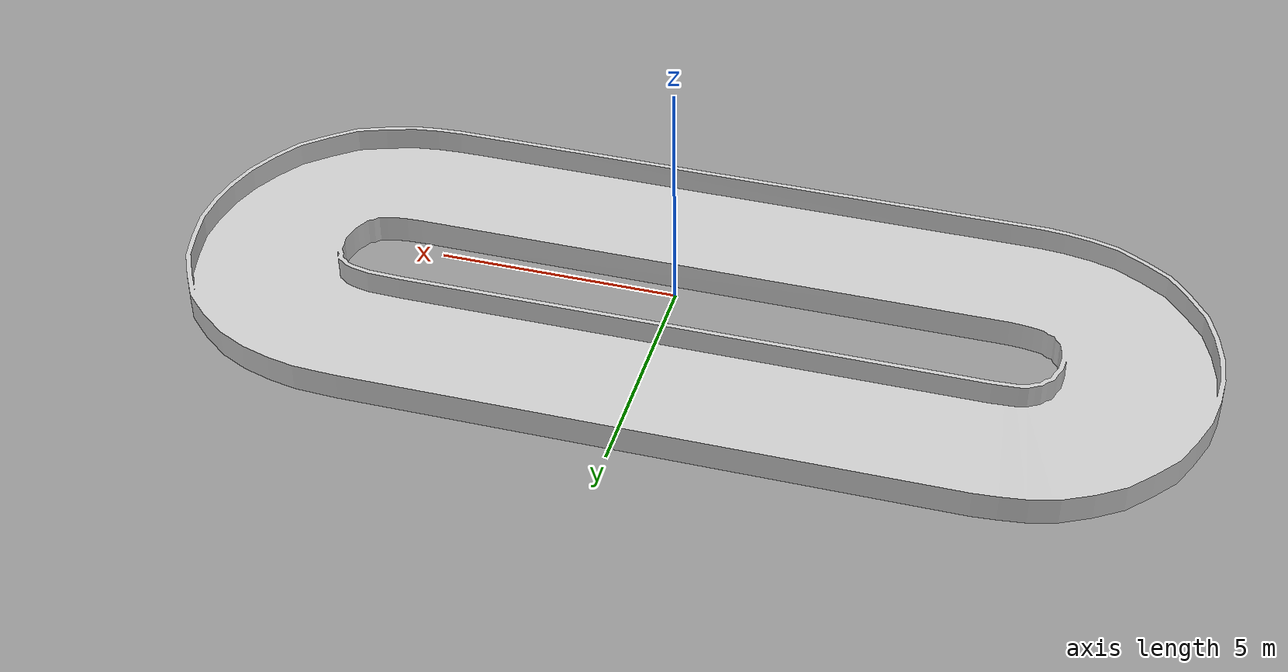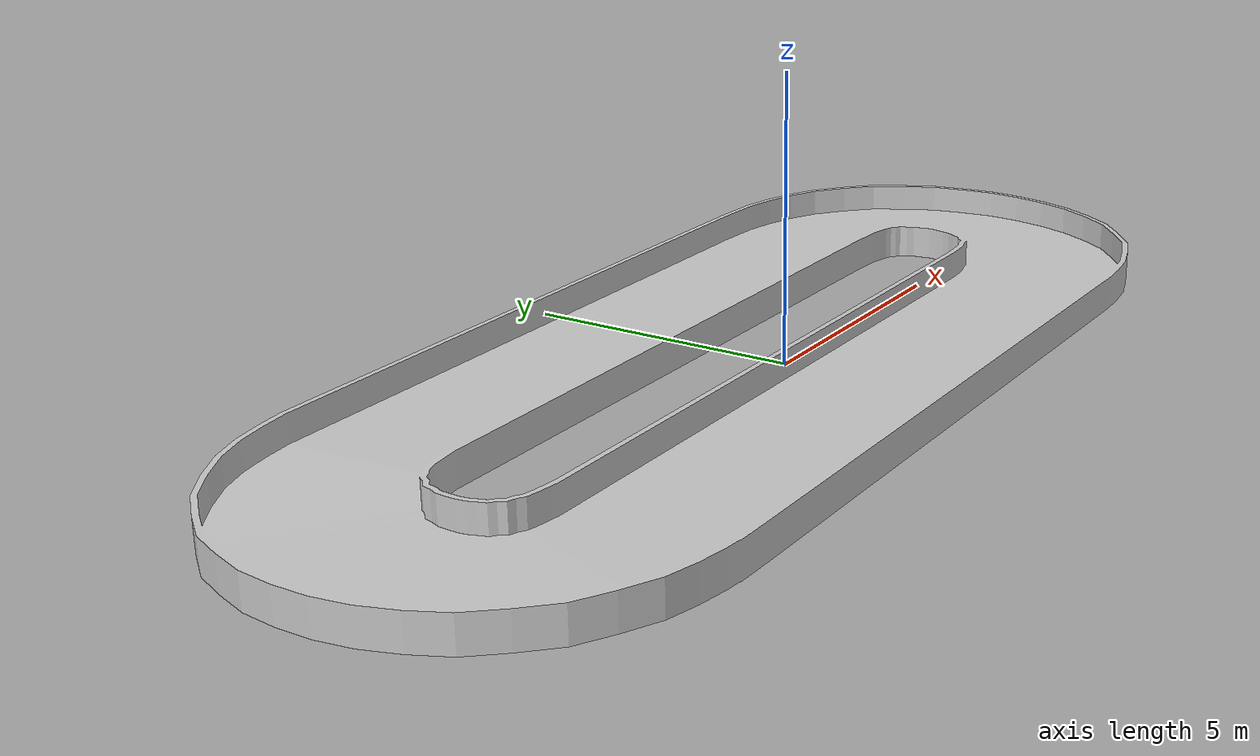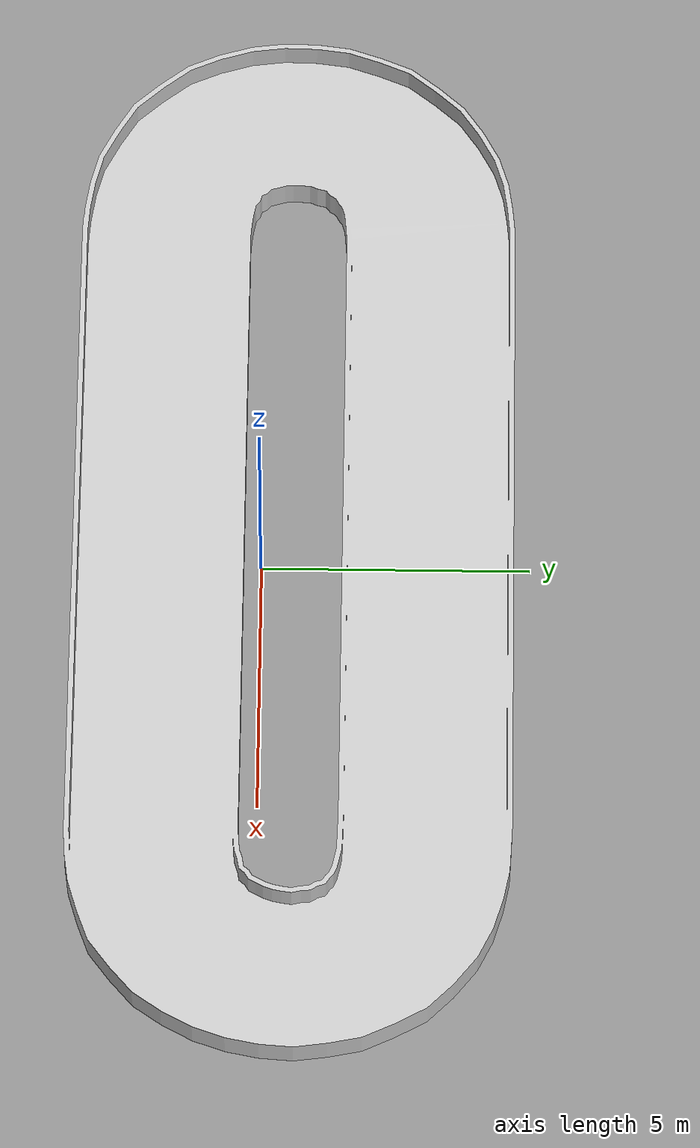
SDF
<?xml version='1.0'?>
<sdf version='1.4'>
  <model name="test_track">
    <link name="link">
      <collision name="collision">
        <geometry>
          <mesh>
            <uri>model://test_track.dae</uri>
          </mesh>
        </geometry>
      </collision>
      <visual name="visual">
        <geometry>
          <mesh>
            <uri>model://test_track.dae</uri>
          </mesh>
        </geometry>
      </visual>
    </link>
    <static>1</static>
  </model>
</sdf>
